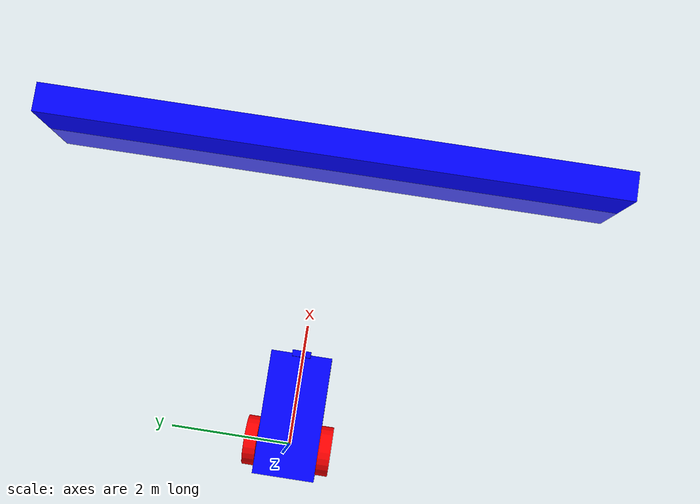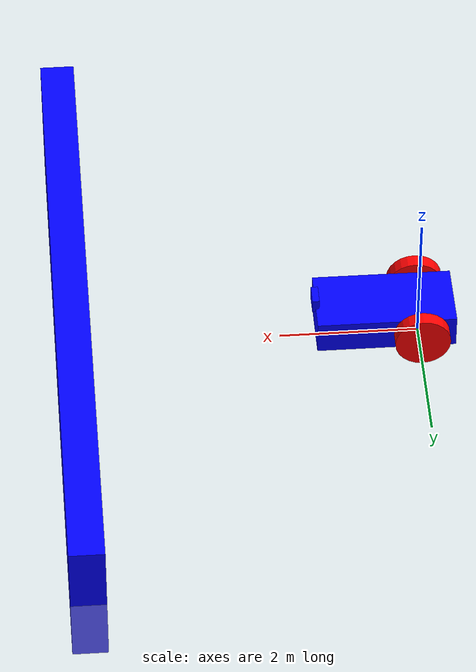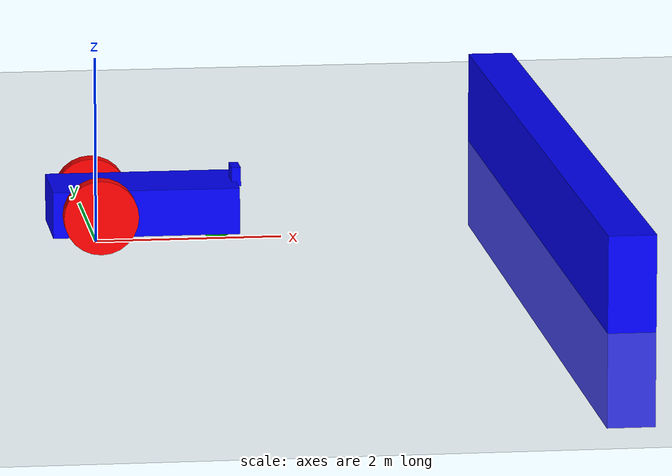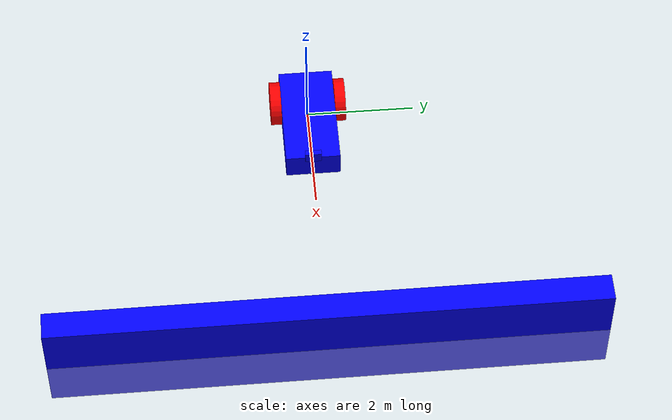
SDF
<?xml version="1.0" ?>
<sdf version="1.10">
    <world name="car_world">
        <physics name="1ms" type="ignored">
            <max_step_size>0.001</max_step_size>
            <real_time_factor>1.0</real_time_factor>
        </physics>

        <!-- Plugins -->
        <plugin
            filename="gz-sim-physics-system"
            name="gz::sim::systems::Physics">
        </plugin>
        <plugin
            filename="gz-sim-user-commands-system"
            name="gz::sim::systems::UserCommands">
        </plugin>
        <plugin
            filename="gz-sim-scene-broadcaster-system"
            name="gz::sim::systems::SceneBroadcaster">
        </plugin>
        <plugin filename="gz-sim-imu-system"
            name="gz::sim::systems::Imu">
        </plugin>
        <plugin
            filename="gz-sim-sensors-system"
            name="gz::sim::systems::Sensors">
            <render_engine>ogre2</render_engine>
        </plugin>

        <light type="directional" name="sun">
            <cast_shadows>true</cast_shadows>
            <pose>0 0 10 0 0 0</pose>
            <diffuse>0.8 0.8 0.8 1</diffuse>
            <specular>0.2 0.2 0.2 1</specular>
            <attenuation>
                <range>1000</range>
                <constant>0.9</constant>
                <linear>0.01</linear>
                <quadratic>0.001</quadratic>
            </attenuation>
            <direction>-0.5 0.1 -0.9</direction>
        </light>

        <model name="ground_plane">
            <static>true</static>
            <link name="link">
                <collision name="collision">
                <geometry>
                    <plane>
                    <normal>0 0 1</normal>
                    </plane>
                </geometry>
                </collision>
                <visual name="visual">
                <geometry>
                    <plane>
                    <normal>0 0 1</normal>
                    <size>100 100</size>
                    </plane>
                </geometry>
                <material>
                    <ambient>0.8 0.8 0.8 1</ambient>
                    <diffuse>0.8 0.8 0.8 1</diffuse>
                    <specular>0.8 0.8 0.8 1</specular>
                </material>
                </visual>
            </link>
        </model>

        <model name='wall'>
            <static>true</static>
            <pose>5 0 0 0 0 0</pose><!--pose relative to the world-->
            <link name='box'>
                <visual name='visual'>
                    <geometry>
                        <box>
                            <size>0.5 10.0 2.0</size>
                        </box>
                    </geometry>
                    <!--let's add color to our link-->
                    <material>
                        <ambient>0.0 0.0 1.0 1</ambient>
                        <diffuse>0.0 0.0 1.0 1</diffuse>
                        <specular>0.0 0.0 1.0 1</specular>
                    </material>
                </visual>
                <collision name='collision'>
                    <geometry>
                        <box>
                            <size>0.5 10.0 2.0</size>
                        </box>
                    </geometry>
                </collision>
            </link>
        </model>

        <model name='main_robot' canonical_link='chassis'>
            <!--pose of the model in the world frame-->
            <pose relative_to='world'>0 0 0 0 0 0</pose>

            <frame name="lidar_frame" attached_to='chassis'>
                <pose>0.8 0 0.5 0 0 0</pose>
            </frame>

            <link name='chassis'>
                <pose relative_to='__model__'>0.5 0 0.4 0 0 0</pose>
                <inertial> <!--inertial properties of the link mass, inertia matrix-->
                    <mass>1.14395</mass>
                    <inertia>
                        <ixx>0.095329</ixx>
                        <ixy>0</ixy>
                        <ixz>0</ixz>
                        <iyy>0.381317</iyy>
                        <iyz>0</iyz>
                        <izz>0.476646</izz>
                    </inertia>
                </inertial>

                <visual name='visual'>
                    <geometry>
                        <box>
                            <size>2.0 1.0 0.5</size>
                        </box>
                    </geometry>
                    <!--let's add color to our link-->
                    <material>
                        <ambient>0.0 0.0 1.0 1</ambient>
                        <diffuse>0.0 0.0 1.0 1</diffuse>
                        <specular>0.0 0.0 1.0 1</specular>
                    </material>
                </visual>

                <collision name='collision'>
                    <geometry>
                        <box>
                            <size>2.0 1.0 0.5</size>
                        </box>
                    </geometry>
                </collision>

                <!-- Sensors -->

                 <sensor name="imu_sensor" type="imu">
                    <always_on>1</always_on>
                    <update_rate>1</update_rate>
                    <visualize>true</visualize>
                    <topic>imu</topic>
                </sensor>

                <sensor name='gpu_lidar' type='gpu_lidar'>
                    <pose relative_to='lidar_frame'>0 0 0 0 0 0</pose>
                    <topic>lidar</topic>
                    <update_rate>10</update_rate>
                    <ray>
                        <scan>
                            <horizontal>
                                <samples>640</samples>
                                <resolution>1</resolution>
                                <min_angle>-0.74351026135</min_angle>
                                <max_angle>0.74351026135</max_angle>
                            </horizontal>
                            <vertical>
                                <samples>480</samples>
                                <resolution>1</resolution>
                                <min_angle>-0.50614548307</min_angle>
                                <max_angle>0.50614548307</max_angle>
                            </vertical>
                        </scan>
                    <range>
                        <min>0.08</min>
                        <max>10.0</max>
                        <resolution>0.01</resolution>
                    </range>
                    </ray>
                    <always_on>1</always_on>
                    <visualize>true</visualize>
                </sensor>
            </link>

            <link name='rgb_camera'>
                <pose relative_to='chassis'>1 0 0.3 0 0 0</pose>
                <visual name="visual">
                    <geometry>
                        <box>
                            <size>0.1 0.3 0.2</size>
                        </box>
                    </geometry>
                    <material>
                        <ambient>0 0 1 1</ambient>
                    </material>
                </visual>
                <sensor name='rgb_camera_sensor' type='camera'>
                    <update_rate>30</update_rate>
                    <camera>
                        <horizontal_fov>1.047</horizontal_fov>
                        <image>
                            <width>640</width>
                            <height>480</height>
                            <format>R8G8B8</format>
                        </image>
                        <clip>
                            <near>0.1</near>
                            <far>100.0</far>
                        </clip>
                    </camera>
                    <always_on>1</always_on>
                    <visualize>true</visualize>
                    <topic>rgb_camera</topic>
                </sensor>
            </link>

            <link name='left_wheel'>
                <pose relative_to="chassis">-0.5 0.6 0 -1.5707 0 0</pose>
                <inertial>
                    <mass>1</mass>
                    <inertia>
                        <ixx>0.043333</ixx>
                        <ixy>0</ixy>
                        <ixz>0</ixz>
                        <iyy>0.043333</iyy>
                        <iyz>0</iyz>
                        <izz>0.08</izz>
                    </inertia>
                </inertial>
                <visual name='visual'>
                    <geometry>
                        <cylinder>
                            <radius>0.4</radius>
                            <length>0.2</length>
                        </cylinder>
                    </geometry>
                    <material>
                        <ambient>1.0 0.0 0.0 1</ambient>
                        <diffuse>1.0 0.0 0.0 1</diffuse>
                        <specular>1.0 0.0 0.0 1</specular>
                    </material>
                </visual>
                <collision name='collision'>
                    <geometry>
                        <cylinder>
                            <radius>0.4</radius>
                            <length>0.2</length>
                        </cylinder>
                    </geometry>
                </collision>
            </link>

            <link name='right_wheel'>
                <pose relative_to="chassis">-0.5 -0.6 0 -1.5707 0 0</pose> <!--angles are in radian-->
                <inertial>
                    <mass>1</mass>
                    <inertia>
                        <ixx>0.043333</ixx>
                        <ixy>0</ixy>
                        <ixz>0</ixz>
                        <iyy>0.043333</iyy>
                        <iyz>0</iyz>
                        <izz>0.08</izz>
                    </inertia>
                </inertial>
                <visual name='visual'>
                    <geometry>
                        <cylinder>
                            <radius>0.4</radius>
                            <length>0.2</length>
                        </cylinder>
                    </geometry>
                    <material>
                        <ambient>1.0 0.0 0.0 1</ambient>
                        <diffuse>1.0 0.0 0.0 1</diffuse>
                        <specular>1.0 0.0 0.0 1</specular>
                    </material>
                </visual>
                <collision name='collision'>
                    <geometry>
                        <cylinder>
                            <radius>0.4</radius>
                            <length>0.2</length>
                        </cylinder>
                    </geometry>
                </collision>
            </link>

            <frame name="caster_frame" attached_to='chassis'>
                <pose>0.8 0 -0.2 0 0 0</pose>
            </frame>

            <!-- A caster wheel to prevent the robot from tipping over -->
            <link name='caster'>
                <pose relative_to='caster_frame'/>
                <inertial>
                    <mass>1</mass>
                    <inertia>
                        <ixx>0.016</ixx>
                        <ixy>0</ixy>
                        <ixz>0</ixz>
                        <iyy>0.016</iyy>
                        <iyz>0</iyz>
                        <izz>0.016</izz>
                    </inertia>
                </inertial>
                <visual name='visual'>
                    <geometry>
                        <sphere>
                            <radius>0.2</radius>
                        </sphere>
                    </geometry>
                    <material>
                        <ambient>0.0 1 0.0 1</ambient>
                        <diffuse>0.0 1 0.0 1</diffuse>
                        <specular>0.0 1 0.0 1</specular>
                    </material>
                </visual>
                <collision name='collision'>
                    <geometry>
                        <sphere>
                            <radius>0.2</radius>
                        </sphere>
                    </geometry>
                </collision>
            </link>

            <!-- Joints -->

            <joint name='left_wheel_joint' type='revolute'>
                <pose relative_to='left_wheel'/>
                <parent>chassis</parent>
                <child>left_wheel</child>
                <axis>
                    <xyz expressed_in='__model__'>0 1 0</xyz> <!--can be defined as any frame or even arbitrary frames-->
                    <limit>
                        <lower>-1.79769e+308</lower>    <!--negative infinity-->
                        <upper>1.79769e+308</upper>     <!--positive infinity-->
                    </limit>
                </axis>
            </joint>

            <joint name='right_wheel_joint' type='revolute'>
                <pose relative_to='right_wheel'/>
                <parent>chassis</parent>
                <child>right_wheel</child>
                <axis>
                    <xyz expressed_in='__model__'>0 1 0</xyz>
                    <limit>
                        <lower>-1.79769e+308</lower>    <!--negative infinity-->
                        <upper>1.79769e+308</upper>     <!--positive infinity-->
                    </limit>
                </axis>
            </joint>

            <joint name='caster_wheel' type='ball'>
                <parent>chassis</parent>
                <child>caster</child>
            </joint>

            <joint name='camera_joint' type='fixed'>
                <parent>chassis</parent>
                <child>rgb_camera</child>
            </joint>

            <!-- Diff Drive Plugin -->
            <plugin
                filename="gz-sim-diff-drive-system"
                name="gz::sim::systems::DiffDrive">
                <left_joint>left_wheel_joint</left_joint>
                <right_joint>right_wheel_joint</right_joint>
                <wheel_separation>1.2</wheel_separation>
                <wheel_radius>0.4</wheel_radius>
                <odom_publish_frequency>1</odom_publish_frequency>
                <topic>cmd_vel</topic>
            </plugin>
        </model>
    </world>
</sdf>
